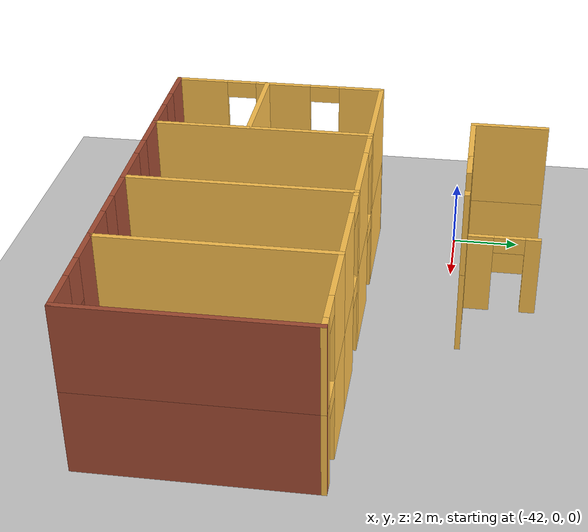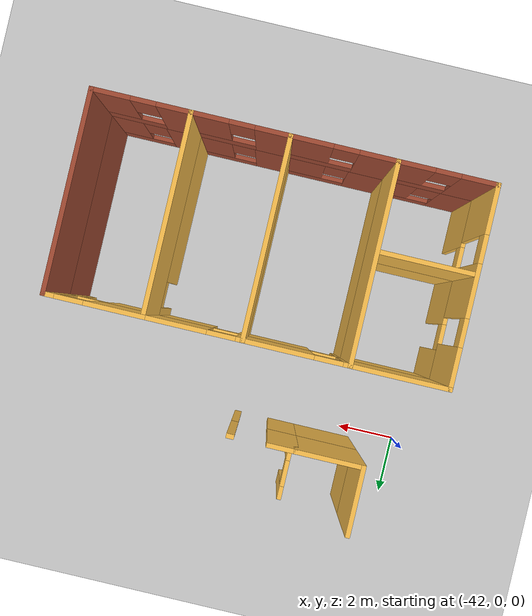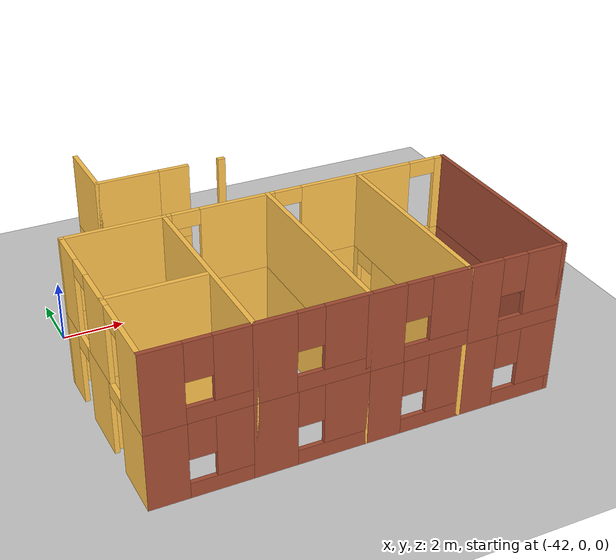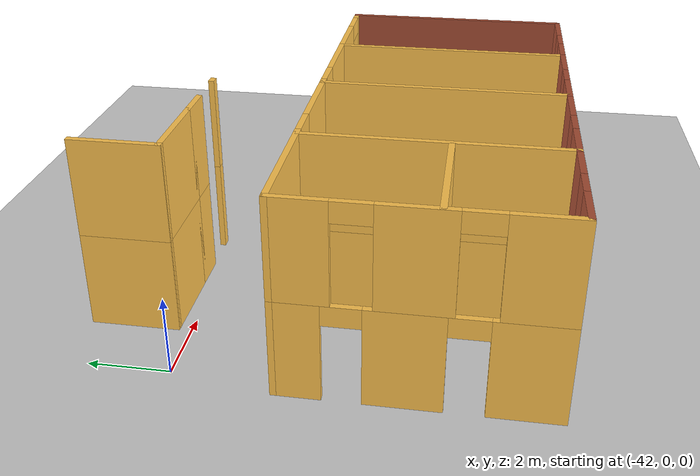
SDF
<sdf version="1.7">
 <world name="default">
  <model name="ground_plane">
   <static>1</static>
   <link name="link">
    <collision name="collision">
     <geometry><plane><normal>0 0 1</normal><size>100 100</size></plane></geometry>
     <surface>
      <contact><collide_bitmask>65535</collide_bitmask></contact>
      <friction><ode><mu>100</mu><mu2>50</mu2></ode></friction>
     </surface>
    </collision>
    <visual name="visual">
     <cast_shadows>0</cast_shadows>
     <geometry><plane><normal>0 0 1</normal><size>100 100</size></plane></geometry>
     <material>
      <script><uri>file://media/materials/scripts/gazebo.material</uri><name>Gazebo/Grey</name></script>
     </material>
    </visual>
   </link>
  </model>
  <model name="DepartmentBuilding">
   <pose>-25.6559 18.8293 0 0 -0 0</pose>
   <link name="Wall_118">
    <collision name="Wall_118_Collision">
     <geometry><box><size>2.25 0.15 2.5</size></box></geometry>
     <pose>0 0 1.25 0 -0 0</pose>
    </collision>
    <visual name="Wall_118_Visual">
     <pose>0 0 1.25 0 -0 0</pose>
     <geometry><box><size>2.25 0.15 2.5</size></box></geometry>
     <material>
      <script><uri>file://media/materials/scripts/gazebo.material</uri><name>Gazebo/Grey</name></script>
      <ambient>1 0.764706 0.305882 1</ambient>
     </material>
     <meta><layer>0</layer></meta>
    </visual>
    <pose>-14.6905 -17.3892 0 0 -0 -1.5708</pose>
   </link>
   <link name="Wall_119">
    <collision name="Wall_119_Collision">
     <geometry><box><size>2.25 0.15 2.5</size></box></geometry>
     <pose>0 0 1.25 0 -0 0</pose>
    </collision>
    <visual name="Wall_119_Visual">
     <pose>0 0 1.25 0 -0 0</pose>
     <geometry><box><size>2.25 0.15 2.5</size></box></geometry>
     <material>
      <script><uri>file://media/materials/scripts/gazebo.material</uri><name>Gazebo/Grey</name></script>
      <ambient>1 0.764706 0.305882 1</ambient>
     </material>
     <meta><layer>0</layer></meta>
    </visual>
    <pose>-13.6405 -18.4392 0 0 -0 0</pose>
   </link>
   <link name="Wall_120">
    <collision name="Wall_120_Collision">
     <geometry><box><size>1 0.15 2.5</size></box></geometry>
     <pose>0 0 1.25 0 -0 0</pose>
    </collision>
    <visual name="Wall_120_Visual">
     <pose>0 0 1.25 0 -0 0</pose>
     <geometry><box><size>1 0.15 2.5</size></box></geometry>
     <material>
      <script><uri>file://media/materials/scripts/gazebo.material</uri><name>Gazebo/Grey</name></script>
      <ambient>1 0.764706 0.305882 1</ambient>
     </material>
     <meta><layer>0</layer></meta>
    </visual>
    <pose>-12.1655 -18.4392 0 0 -0 0</pose>
   </link>
   <link name="Wall_122">
    <pose>-12.5905 -17.3892 0 0 -0 1.5708</pose>
    <visual name="Wall_122_Visual_0">
     <pose>-0.67873 0 1.25 0 -0 0</pose>
     <geometry><box><size>0.89254 0.15 2.5</size></box></geometry>
     <material>
      <script><uri>file://media/materials/scripts/gazebo.material</uri><name>Gazebo/Grey</name></script>
      <ambient>1 0.764706 0.305882 1</ambient>
     </material>
     <meta><layer>0</layer></meta>
    </visual>
    <collision name="Wall_122_Collision_0">
     <geometry><box><size>0.89254 0.15 2.5</size></box></geometry>
     <pose>-0.67873 0 1.25 0 -0 0</pose>
    </collision>
    <visual name="Wall_122_Visual_1">
     <pose>0.89627 0 1.25 0 -0 0</pose>
     <geometry><box><size>0.45746 0.15 2.5</size></box></geometry>
     <material>
      <script><uri>file://media/materials/scripts/gazebo.material</uri><name>Gazebo/Grey</name></script>
      <ambient>1 0.764706 0.305882 1</ambient>
     </material>
     <meta><layer>0</layer></meta>
    </visual>
    <collision name="Wall_122_Collision_1">
     <geometry><box><size>0.45746 0.15 2.5</size></box></geometry>
     <pose>0.89627 0 1.25 0 -0 0</pose>
    </collision>
    <visual name="Wall_122_Visual_2">
     <pose>0.21754 0 2.25 0 -0 0</pose>
     <geometry><box><size>0.9 0.15 0.5</size></box></geometry>
     <material>
      <script><uri>file://media/materials/scripts/gazebo.material</uri><name>Gazebo/Grey</name></script>
      <ambient>1 0.764706 0.305882 1</ambient>
     </material>
     <meta><layer>0</layer></meta>
    </visual>
    <collision name="Wall_122_Collision_2">
     <geometry><box><size>0.9 0.15 0.5</size></box></geometry>
     <pose>0.21754 0 2.25 0 -0 0</pose>
    </collision>
   </link>
   <link name="Wall_129">
    <collision name="Wall_129_Collision">
     <geometry><box><size>0.25 0.15 2.5</size></box></geometry>
     <pose>0 0 1.25 0 -0 0</pose>
    </collision>
    <visual name="Wall_129_Visual">
     <pose>0 0 1.25 0 -0 0</pose>
     <geometry><box><size>0.25 0.15 2.5</size></box></geometry>
     <material>
      <script><uri>file://media/materials/scripts/gazebo.material</uri><name>Gazebo/Grey</name></script>
      <ambient>1 0.764706 0.305882 1</ambient>
     </material>
     <meta><layer>0</layer></meta>
    </visual>
    <pose>-10.5405 -18.4392 0 0 -0 3.14159</pose>
   </link>
   <link name="Wall_48">
    <collision name="Wall_48_Collision">
     <geometry><box><size>6.5 0.15 2.5</size></box></geometry>
     <pose>0 0 1.25 0 -0 0</pose>
    </collision>
    <visual name="Wall_48_Visual">
     <pose>0 0 1.25 0 -0 0</pose>
     <geometry><box><size>6.5 0.15 2.5</size></box></geometry>
     <material>
      <script><uri>file://media/materials/scripts/gazebo.material</uri><name>Gazebo/Bricks</name></script>
      <ambient>1 1 1 1</ambient>
     </material>
     <meta><layer>0</layer></meta>
    </visual>
    <pose>-4.04054 -24.5142 0 0 -0 1.5708</pose>
   </link>
   <link name="Wall_54">
    <pose>-5.59054 -21.3392 0 0 -0 3.14159</pose>
    <visual name="Wall_54_Visual_0">
     <pose>-1.41477 0 1.25 0 -0 0</pose>
     <geometry><box><size>0.420453 0.15 2.5</size></box></geometry>
     <material>
      <script><uri>file://media/materials/scripts/gazebo.material</uri><name>Gazebo/Grey</name></script>
      <ambient>1 0.764706 0.305882 1</ambient>
     </material>
     <meta><layer>0</layer></meta>
    </visual>
    <collision name="Wall_54_Collision_0">
     <geometry><box><size>0.420453 0.15 2.5</size></box></geometry>
     <pose>-1.41477 0 1.25 0 -0 0</pose>
    </collision>
    <visual name="Wall_54_Visual_1">
     <pose>0.660226 0 1.25 0 -0 0</pose>
     <geometry><box><size>1.92955 0.15 2.5</size></box></geometry>
     <material>
      <script><uri>file://media/materials/scripts/gazebo.material</uri><name>Gazebo/Grey</name></script>
      <ambient>1 0.764706 0.305882 1</ambient>
     </material>
     <meta><layer>0</layer></meta>
    </visual>
    <collision name="Wall_54_Collision_1">
     <geometry><box><size>1.92955 0.15 2.5</size></box></geometry>
     <pose>0.660226 0 1.25 0 -0 0</pose>
    </collision>
    <visual name="Wall_54_Visual_2">
     <pose>-0.754547 0 2.25 0 -0 0</pose>
     <geometry><box><size>0.9 0.15 0.5</size></box></geometry>
     <material>
      <script><uri>file://media/materials/scripts/gazebo.material</uri><name>Gazebo/Grey</name></script>
      <ambient>1 0.764706 0.305882 1</ambient>
     </material>
     <meta><layer>0</layer></meta>
    </visual>
    <collision name="Wall_54_Collision_2">
     <geometry><box><size>0.9 0.15 0.5</size></box></geometry>
     <pose>-0.754547 0 2.25 0 -0 0</pose>
    </collision>
   </link>
   <link name="Wall_56">
    <pose>-7.14054 -24.5142 0 0 -0 -1.5708</pose>
    <visual name="Wall_56_Visual_0">
     <pose>-3.04712 0 1.25 0 -0 0</pose>
     <geometry><box><size>0.405751 0.15 2.5</size></box></geometry>
     <material>
      <script><uri>file://media/materials/scripts/gazebo.material</uri><name>Gazebo/Grey</name></script>
      <ambient>1 0.764706 0.305882 1</ambient>
     </material>
     <meta><layer>0</layer></meta>
    </visual>
    <collision name="Wall_56_Collision_0">
     <geometry><box><size>0.405751 0.15 2.5</size></box></geometry>
     <pose>-3.04712 0 1.25 0 -0 0</pose>
    </collision>
    <visual name="Wall_56_Visual_1">
     <pose>0.652876 0 1.25 0 -0 0</pose>
     <geometry><box><size>5.19425 0.15 2.5</size></box></geometry>
     <material>
      <script><uri>file://media/materials/scripts/gazebo.material</uri><name>Gazebo/Grey</name></script>
      <ambient>1 0.764706 0.305882 1</ambient>
     </material>
     <meta><layer>0</layer></meta>
    </visual>
    <collision name="Wall_56_Collision_1">
     <geometry><box><size>5.19425 0.15 2.5</size></box></geometry>
     <pose>0.652876 0 1.25 0 -0 0</pose>
    </collision>
    <visual name="Wall_56_Visual_2">
     <pose>-2.39425 0 2.25 0 -0 0</pose>
     <geometry><box><size>0.9 0.15 0.5</size></box></geometry>
     <material>
      <script><uri>file://media/materials/scripts/gazebo.material</uri><name>Gazebo/Grey</name></script>
      <ambient>1 0.764706 0.305882 1</ambient>
     </material>
     <meta><layer>0</layer></meta>
    </visual>
    <collision name="Wall_56_Collision_2">
     <geometry><box><size>0.9 0.15 0.5</size></box></geometry>
     <pose>-2.39425 0 2.25 0 -0 0</pose>
    </collision>
   </link>
   <link name="Wall_57">
    <pose>-5.59054 -27.6892 0 0 -0 0</pose>
    <visual name="Wall_57_Visual_0">
     <pose>-1.01873 0 1.25 0 -0 0</pose>
     <geometry><box><size>1.21255 0.15 2.5</size></box></geometry>
     <material>
      <script><uri>file://media/materials/scripts/gazebo.material</uri><name>Gazebo/Bricks</name></script>
      <ambient>1 1 1 1</ambient>
     </material>
     <meta><layer>0</layer></meta>
    </visual>
    <collision name="Wall_57_Collision_0">
     <geometry><box><size>1.21255 0.15 2.5</size></box></geometry>
     <pose>-1.01873 0 1.25 0 -0 0</pose>
    </collision>
    <visual name="Wall_57_Visual_1">
     <pose>0.606273 0 0.25 0 -0 0</pose>
     <geometry><box><size>2.03745 0.15 0.5</size></box></geometry>
     <material>
      <script><uri>file://media/materials/scripts/gazebo.material</uri><name>Gazebo/Bricks</name></script>
      <ambient>1 1 1 1</ambient>
     </material>
     <meta><layer>0</layer></meta>
    </visual>
    <collision name="Wall_57_Collision_1">
     <geometry><box><size>2.03745 0.15 0.5</size></box></geometry>
     <pose>0.606273 0 0.25 0 -0 0</pose>
    </collision>
    <visual name="Wall_57_Visual_2">
     <pose>1.00627 0 1.5 0 -0 0</pose>
     <geometry><box><size>1.23745 0.15 2</size></box></geometry>
     <material>
      <script><uri>file://media/materials/scripts/gazebo.material</uri><name>Gazebo/Bricks</name></script>
      <ambient>1 1 1 1</ambient>
     </material>
     <meta><layer>0</layer></meta>
    </visual>
    <collision name="Wall_57_Collision_2">
     <geometry><box><size>1.23745 0.15 2</size></box></geometry>
     <pose>1.00627 0 1.5 0 -0 0</pose>
    </collision>
    <visual name="Wall_57_Visual_3">
     <pose>-0.012454 0 1.9 0 -0 0</pose>
     <geometry><box><size>0.8 0.15 1.2</size></box></geometry>
     <material>
      <script><uri>file://media/materials/scripts/gazebo.material</uri><name>Gazebo/Bricks</name></script>
      <ambient>1 1 1 1</ambient>
     </material>
     <meta><layer>0</layer></meta>
    </visual>
    <collision name="Wall_57_Collision_3">
     <geometry><box><size>0.8 0.15 1.2</size></box></geometry>
     <pose>-0.012454 0 1.9 0 -0 0</pose>
    </collision>
   </link>
   <link name="Wall_59">
    <pose>-8.69054 -21.3392 0 0 -0 3.14159</pose>
    <visual name="Wall_59_Visual_0">
     <pose>-0.626948 0 1.25 0 -0 0</pose>
     <geometry><box><size>1.9961 0.15 2.5</size></box></geometry>
     <material>
      <script><uri>file://media/materials/scripts/gazebo.material</uri><name>Gazebo/Grey</name></script>
      <ambient>1 0.764706 0.305882 1</ambient>
     </material>
     <meta><layer>0</layer></meta>
    </visual>
    <collision name="Wall_59_Collision_0">
     <geometry><box><size>1.9961 0.15 2.5</size></box></geometry>
     <pose>-0.626948 0 1.25 0 -0 0</pose>
    </collision>
    <visual name="Wall_59_Visual_1">
     <pose>1.44805 0 1.25 0 -0 0</pose>
     <geometry><box><size>0.353897 0.15 2.5</size></box></geometry>
     <material>
      <script><uri>file://media/materials/scripts/gazebo.material</uri><name>Gazebo/Grey</name></script>
      <ambient>1 0.764706 0.305882 1</ambient>
     </material>
     <meta><layer>0</layer></meta>
    </visual>
    <collision name="Wall_59_Collision_1">
     <geometry><box><size>0.353897 0.15 2.5</size></box></geometry>
     <pose>1.44805 0 1.25 0 -0 0</pose>
    </collision>
    <visual name="Wall_59_Visual_2">
     <pose>0.821103 0 2.25 0 -0 0</pose>
     <geometry><box><size>0.9 0.15 0.5</size></box></geometry>
     <material>
      <script><uri>file://media/materials/scripts/gazebo.material</uri><name>Gazebo/Grey</name></script>
      <ambient>1 0.764706 0.305882 1</ambient>
     </material>
     <meta><layer>0</layer></meta>
    </visual>
    <collision name="Wall_59_Collision_2">
     <geometry><box><size>0.9 0.15 0.5</size></box></geometry>
     <pose>0.821103 0 2.25 0 -0 0</pose>
    </collision>
   </link>
   <link name="Wall_60">
    <collision name="Wall_60_Collision">
     <geometry><box><size>6.5 0.15 2.5</size></box></geometry>
     <pose>0 0 1.25 0 -0 0</pose>
    </collision>
    <visual name="Wall_60_Visual">
     <pose>0 0 1.25 0 -0 0</pose>
     <geometry><box><size>6.5 0.15 2.5</size></box></geometry>
     <material>
      <script><uri>file://media/materials/scripts/gazebo.material</uri><name>Gazebo/Grey</name></script>
      <ambient>1 0.764706 0.305882 1</ambient>
     </material>
     <meta><layer>0</layer></meta>
    </visual>
    <pose>-10.2405 -24.5142 0 0 -0 -1.5708</pose>
   </link>
   <link name="Wall_61">
    <pose>-8.69054 -27.6892 0 0 -0 0</pose>
    <visual name="Wall_61_Visual_0">
     <pose>-1.01242 0 1.25 0 -0 0</pose>
     <geometry><box><size>1.22517 0.15 2.5</size></box></geometry>
     <material>
      <script><uri>file://media/materials/scripts/gazebo.material</uri><name>Gazebo/Bricks</name></script>
      <ambient>1 1 1 1</ambient>
     </material>
     <meta><layer>0</layer></meta>
    </visual>
    <collision name="Wall_61_Collision_0">
     <geometry><box><size>1.22517 0.15 2.5</size></box></geometry>
     <pose>-1.01242 0 1.25 0 -0 0</pose>
    </collision>
    <visual name="Wall_61_Visual_1">
     <pose>0.612585 0 0.25 0 -0 0</pose>
     <geometry><box><size>2.02483 0.15 0.5</size></box></geometry>
     <material>
      <script><uri>file://media/materials/scripts/gazebo.material</uri><name>Gazebo/Bricks</name></script>
      <ambient>1 1 1 1</ambient>
     </material>
     <meta><layer>0</layer></meta>
    </visual>
    <collision name="Wall_61_Collision_1">
     <geometry><box><size>2.02483 0.15 0.5</size></box></geometry>
     <pose>0.612585 0 0.25 0 -0 0</pose>
    </collision>
    <visual name="Wall_61_Visual_2">
     <pose>1.01259 0 1.5 0 -0 0</pose>
     <geometry><box><size>1.22483 0.15 2</size></box></geometry>
     <material>
      <script><uri>file://media/materials/scripts/gazebo.material</uri><name>Gazebo/Bricks</name></script>
      <ambient>1 1 1 1</ambient>
     </material>
     <meta><layer>0</layer></meta>
    </visual>
    <collision name="Wall_61_Collision_2">
     <geometry><box><size>1.22483 0.15 2</size></box></geometry>
     <pose>1.01259 0 1.5 0 -0 0</pose>
    </collision>
    <visual name="Wall_61_Visual_3">
     <pose>0.00017 0 1.9 0 -0 0</pose>
     <geometry><box><size>0.8 0.15 1.2</size></box></geometry>
     <material>
      <script><uri>file://media/materials/scripts/gazebo.material</uri><name>Gazebo/Bricks</name></script>
      <ambient>1 1 1 1</ambient>
     </material>
     <meta><layer>0</layer></meta>
    </visual>
    <collision name="Wall_61_Collision_3">
     <geometry><box><size>0.8 0.15 1.2</size></box></geometry>
     <pose>0.00017 0 1.9 0 -0 0</pose>
    </collision>
   </link>
   <link name="Wall_63">
    <pose>-11.9155 -21.3392 0 0 -0 3.14159</pose>
    <visual name="Wall_63_Visual_0">
     <pose>-0.593884 0 1.25 0 -0 0</pose>
     <geometry><box><size>2.31223 0.15 2.5</size></box></geometry>
     <material>
      <script><uri>file://media/materials/scripts/gazebo.material</uri><name>Gazebo/Grey</name></script>
      <ambient>1 0.764706 0.305882 1</ambient>
     </material>
     <meta><layer>0</layer></meta>
    </visual>
    <collision name="Wall_63_Collision_0">
     <geometry><box><size>2.31223 0.15 2.5</size></box></geometry>
     <pose>-0.593884 0 1.25 0 -0 0</pose>
    </collision>
    <visual name="Wall_63_Visual_1">
     <pose>1.60612 0 1.25 0 -0 0</pose>
     <geometry><box><size>0.287767 0.15 2.5</size></box></geometry>
     <material>
      <script><uri>file://media/materials/scripts/gazebo.material</uri><name>Gazebo/Grey</name></script>
      <ambient>1 0.764706 0.305882 1</ambient>
     </material>
     <meta><layer>0</layer></meta>
    </visual>
    <collision name="Wall_63_Collision_1">
     <geometry><box><size>0.287767 0.15 2.5</size></box></geometry>
     <pose>1.60612 0 1.25 0 -0 0</pose>
    </collision>
    <visual name="Wall_63_Visual_2">
     <pose>1.01223 0 2.25 0 -0 0</pose>
     <geometry><box><size>0.9 0.15 0.5</size></box></geometry>
     <material>
      <script><uri>file://media/materials/scripts/gazebo.material</uri><name>Gazebo/Grey</name></script>
      <ambient>1 0.764706 0.305882 1</ambient>
     </material>
     <meta><layer>0</layer></meta>
    </visual>
    <collision name="Wall_63_Collision_2">
     <geometry><box><size>0.9 0.15 0.5</size></box></geometry>
     <pose>1.01223 0 2.25 0 -0 0</pose>
    </collision>
   </link>
   <link name="Wall_64">
    <collision name="Wall_64_Collision">
     <geometry><box><size>6.5 0.15 2.5</size></box></geometry>
     <pose>0 0 1.25 0 -0 0</pose>
    </collision>
    <visual name="Wall_64_Visual">
     <pose>0 0 1.25 0 -0 0</pose>
     <geometry><box><size>6.5 0.15 2.5</size></box></geometry>
     <material>
      <script><uri>file://media/materials/scripts/gazebo.material</uri><name>Gazebo/Grey</name></script>
      <ambient>1 0.764706 0.305882 1</ambient>
     </material>
     <meta><layer>0</layer></meta>
    </visual>
    <pose>-13.5905 -24.5142 0 0 -0 -1.5708</pose>
   </link>
   <link name="Wall_65">
    <pose>-11.9155 -27.6892 0 0 -0 0</pose>
    <visual name="Wall_65_Visual_0">
     <pose>-1.08683 0 1.25 0 -0 0</pose>
     <geometry><box><size>1.32634 0.15 2.5</size></box></geometry>
     <material>
      <script><uri>file://media/materials/scripts/gazebo.material</uri><name>Gazebo/Bricks</name></script>
      <ambient>1 1 1 1</ambient>
     </material>
     <meta><layer>0</layer></meta>
    </visual>
    <collision name="Wall_65_Collision_0">
     <geometry><box><size>1.32634 0.15 2.5</size></box></geometry>
     <pose>-1.08683 0 1.25 0 -0 0</pose>
    </collision>
    <visual name="Wall_65_Visual_1">
     <pose>0.663168 0 0.25 0 -0 0</pose>
     <geometry><box><size>2.17366 0.15 0.5</size></box></geometry>
     <material>
      <script><uri>file://media/materials/scripts/gazebo.material</uri><name>Gazebo/Bricks</name></script>
      <ambient>1 1 1 1</ambient>
     </material>
     <meta><layer>0</layer></meta>
    </visual>
    <collision name="Wall_65_Collision_1">
     <geometry><box><size>2.17366 0.15 0.5</size></box></geometry>
     <pose>0.663168 0 0.25 0 -0 0</pose>
    </collision>
    <visual name="Wall_65_Visual_2">
     <pose>1.06317 0 1.5 0 -0 0</pose>
     <geometry><box><size>1.37366 0.15 2</size></box></geometry>
     <material>
      <script><uri>file://media/materials/scripts/gazebo.material</uri><name>Gazebo/Bricks</name></script>
      <ambient>1 1 1 1</ambient>
     </material>
     <meta><layer>0</layer></meta>
    </visual>
    <collision name="Wall_65_Collision_2">
     <geometry><box><size>1.37366 0.15 2</size></box></geometry>
     <pose>1.06317 0 1.5 0 -0 0</pose>
    </collision>
    <visual name="Wall_65_Visual_3">
     <pose>-0.023664 0 1.9 0 -0 0</pose>
     <geometry><box><size>0.8 0.15 1.2</size></box></geometry>
     <material>
      <script><uri>file://media/materials/scripts/gazebo.material</uri><name>Gazebo/Bricks</name></script>
      <ambient>1 1 1 1</ambient>
     </material>
     <meta><layer>0</layer></meta>
    </visual>
    <collision name="Wall_65_Collision_3">
     <geometry><box><size>0.8 0.15 1.2</size></box></geometry>
     <pose>-0.023664 0 1.9 0 -0 0</pose>
    </collision>
   </link>
   <link name="Wall_805">
    <collision name="Wall_805_Collision">
     <geometry><box><size>6.5 0.15 2.5</size></box></geometry>
     <pose>0 0 1.25 0 -0 0</pose>
    </collision>
    <visual name="Wall_805_Visual">
     <pose>0 0 1.25 0 -0 0</pose>
     <geometry><box><size>6.5 0.15 2.5</size></box></geometry>
     <material>
      <script><uri>file://media/materials/scripts/gazebo.material</uri><name>Gazebo/Bricks</name></script>
      <ambient>1 1 1 1</ambient>
     </material>
     <meta><layer>1</layer></meta>
    </visual>
    <pose>-4.04054 -24.5142 2.5 0 -0 1.5708</pose>
   </link>
   <link name="Wall_806">
    <pose>-5.59054 -21.3392 2.5 0 -0 3.14159</pose>
    <visual name="Wall_806_Visual_0">
     <pose>-1.41607 0 1.25 0 -0 0</pose>
     <geometry><box><size>0.417858 0.15 2.5</size></box></geometry>
     <material>
      <script><uri>file://media/materials/scripts/gazebo.material</uri><name>Gazebo/Grey</name></script>
      <ambient>1 0.764706 0.305882 1</ambient>
     </material>
     <meta><layer>1</layer></meta>
    </visual>
    <collision name="Wall_806_Collision_0">
     <geometry><box><size>0.417858 0.15 2.5</size></box></geometry>
     <pose>-1.41607 0 1.25 0 -0 0</pose>
    </collision>
    <visual name="Wall_806_Visual_1">
     <pose>0.658929 0 1.25 0 -0 0</pose>
     <geometry><box><size>1.93214 0.15 2.5</size></box></geometry>
     <material>
      <script><uri>file://media/materials/scripts/gazebo.material</uri><name>Gazebo/Grey</name></script>
      <ambient>1 0.764706 0.305882 1</ambient>
     </material>
     <meta><layer>1</layer></meta>
    </visual>
    <collision name="Wall_806_Collision_1">
     <geometry><box><size>1.93214 0.15 2.5</size></box></geometry>
     <pose>0.658929 0 1.25 0 -0 0</pose>
    </collision>
    <visual name="Wall_806_Visual_2">
     <pose>-0.757142 0 2.25 0 -0 0</pose>
     <geometry><box><size>0.9 0.15 0.5</size></box></geometry>
     <material>
      <script><uri>file://media/materials/scripts/gazebo.material</uri><name>Gazebo/Grey</name></script>
      <ambient>1 0.764706 0.305882 1</ambient>
     </material>
     <meta><layer>1</layer></meta>
    </visual>
    <collision name="Wall_806_Collision_2">
     <geometry><box><size>0.9 0.15 0.5</size></box></geometry>
     <pose>-0.757142 0 2.25 0 -0 0</pose>
    </collision>
   </link>
   <link name="Wall_807">
    <collision name="Wall_807_Collision">
     <geometry><box><size>6.5 0.15 2.5</size></box></geometry>
     <pose>0 0 1.25 0 -0 0</pose>
    </collision>
    <visual name="Wall_807_Visual">
     <pose>0 0 1.25 0 -0 0</pose>
     <geometry><box><size>6.5 0.15 2.5</size></box></geometry>
     <material>
      <script><uri>file://media/materials/scripts/gazebo.material</uri><name>Gazebo/Grey</name></script>
      <ambient>1 0.764706 0.305882 1</ambient>
     </material>
     <meta><layer>1</layer></meta>
    </visual>
    <pose>-7.14054 -24.5142 2.5 0 -0 -1.5708</pose>
   </link>
   <link name="Wall_808">
    <pose>-5.59054 -27.6892 2.5 0 -0 0</pose>
    <visual name="Wall_808_Visual_0">
     <pose>-1.04507 0 1.25 0 -0 0</pose>
     <geometry><box><size>1.15985 0.15 2.5</size></box></geometry>
     <material>
      <script><uri>file://media/materials/scripts/gazebo.material</uri><name>Gazebo/Bricks</name></script>
      <ambient>1 1 1 1</ambient>
     </material>
     <meta><layer>1</layer></meta>
    </visual>
    <collision name="Wall_808_Collision_0">
     <geometry><box><size>1.15985 0.15 2.5</size></box></geometry>
     <pose>-1.04507 0 1.25 0 -0 0</pose>
    </collision>
    <visual name="Wall_808_Visual_1">
     <pose>0.579926 0 0.25 0 -0 0</pose>
     <geometry><box><size>2.09015 0.15 0.5</size></box></geometry>
     <material>
      <script><uri>file://media/materials/scripts/gazebo.material</uri><name>Gazebo/Bricks</name></script>
      <ambient>1 1 1 1</ambient>
     </material>
     <meta><layer>1</layer></meta>
    </visual>
    <collision name="Wall_808_Collision_1">
     <geometry><box><size>2.09015 0.15 0.5</size></box></geometry>
     <pose>0.579926 0 0.25 0 -0 0</pose>
    </collision>
    <visual name="Wall_808_Visual_2">
     <pose>0.979926 0 1.5 0 -0 0</pose>
     <geometry><box><size>1.29015 0.15 2</size></box></geometry>
     <material>
      <script><uri>file://media/materials/scripts/gazebo.material</uri><name>Gazebo/Bricks</name></script>
      <ambient>1 1 1 1</ambient>
     </material>
     <meta><layer>1</layer></meta>
    </visual>
    <collision name="Wall_808_Collision_2">
     <geometry><box><size>1.29015 0.15 2</size></box></geometry>
     <pose>0.979926 0 1.5 0 -0 0</pose>
    </collision>
    <visual name="Wall_808_Visual_3">
     <pose>-0.065147 0 1.9 0 -0 0</pose>
     <geometry><box><size>0.8 0.15 1.2</size></box></geometry>
     <material>
      <script><uri>file://media/materials/scripts/gazebo.material</uri><name>Gazebo/Bricks</name></script>
      <ambient>1 1 1 1</ambient>
     </material>
     <meta><layer>1</layer></meta>
    </visual>
    <collision name="Wall_808_Collision_3">
     <geometry><box><size>0.8 0.15 1.2</size></box></geometry>
     <pose>-0.065147 0 1.9 0 -0 0</pose>
    </collision>
   </link>
   <link name="Wall_809">
    <pose>-8.69054 -21.3392 2.5 0 -0 3.14159</pose>
    <visual name="Wall_809_Visual_0">
     <pose>-0.598653 0 1.25 0 -0 0</pose>
     <geometry><box><size>2.05269 0.15 2.5</size></box></geometry>
     <material>
      <script><uri>file://media/materials/scripts/gazebo.material</uri><name>Gazebo/Grey</name></script>
      <ambient>1 0.764706 0.305882 1</ambient>
     </material>
     <meta><layer>1</layer></meta>
    </visual>
    <collision name="Wall_809_Collision_0">
     <geometry><box><size>2.05269 0.15 2.5</size></box></geometry>
     <pose>-0.598653 0 1.25 0 -0 0</pose>
    </collision>
    <visual name="Wall_809_Visual_1">
     <pose>1.47635 0 1.25 0 -0 0</pose>
     <geometry><box><size>0.297307 0.15 2.5</size></box></geometry>
     <material>
      <script><uri>file://media/materials/scripts/gazebo.material</uri><name>Gazebo/Grey</name></script>
      <ambient>1 0.764706 0.305882 1</ambient>
     </material>
     <meta><layer>1</layer></meta>
    </visual>
    <collision name="Wall_809_Collision_1">
     <geometry><box><size>0.297307 0.15 2.5</size></box></geometry>
     <pose>1.47635 0 1.25 0 -0 0</pose>
    </collision>
    <visual name="Wall_809_Visual_2">
     <pose>0.877693 0 2.25 0 -0 0</pose>
     <geometry><box><size>0.9 0.15 0.5</size></box></geometry>
     <material>
      <script><uri>file://media/materials/scripts/gazebo.material</uri><name>Gazebo/Grey</name></script>
      <ambient>1 0.764706 0.305882 1</ambient>
     </material>
     <meta><layer>1</layer></meta>
    </visual>
    <collision name="Wall_809_Collision_2">
     <geometry><box><size>0.9 0.15 0.5</size></box></geometry>
     <pose>0.877693 0 2.25 0 -0 0</pose>
    </collision>
   </link>
   <link name="Wall_81">
    <collision name="Wall_81_Collision">
     <geometry><box><size>3.25 0.15 2.5</size></box></geometry>
     <pose>0 0 1.25 0 -0 0</pose>
    </collision>
    <visual name="Wall_81_Visual">
     <pose>0 0 1.25 0 -0 0</pose>
     <geometry><box><size>3.25 0.15 2.5</size></box></geometry>
     <material>
      <script><uri>file://media/materials/scripts/gazebo.material</uri><name>Gazebo/Grey</name></script>
      <ambient>1 0.764706 0.305882 1</ambient>
     </material>
     <meta><layer>0</layer></meta>
    </visual>
    <pose>-15.1405 -21.3392 0 0 -0 3.14159</pose>
   </link>
   <link name="Wall_810">
    <collision name="Wall_810_Collision">
     <geometry><box><size>6.5 0.15 2.5</size></box></geometry>
     <pose>0 0 1.25 0 -0 0</pose>
    </collision>
    <visual name="Wall_810_Visual">
     <pose>0 0 1.25 0 -0 0</pose>
     <geometry><box><size>6.5 0.15 2.5</size></box></geometry>
     <material>
      <script><uri>file://media/materials/scripts/gazebo.material</uri><name>Gazebo/Grey</name></script>
      <ambient>1 0.764706 0.305882 1</ambient>
     </material>
     <meta><layer>1</layer></meta>
    </visual>
    <pose>-10.2405 -24.5142 2.5 0 -0 -1.5708</pose>
   </link>
   <link name="Wall_811">
    <pose>-8.69054 -27.6892 2.5 0 -0 0</pose>
    <visual name="Wall_811_Visual_0">
     <pose>-1.03036 0 1.25 0 -0 0</pose>
     <geometry><box><size>1.18927 0.15 2.5</size></box></geometry>
     <material>
      <script><uri>file://media/materials/scripts/gazebo.material</uri><name>Gazebo/Bricks</name></script>
      <ambient>1 1 1 1</ambient>
     </material>
     <meta><layer>1</layer></meta>
    </visual>
    <collision name="Wall_811_Collision_0">
     <geometry><box><size>1.18927 0.15 2.5</size></box></geometry>
     <pose>-1.03036 0 1.25 0 -0 0</pose>
    </collision>
    <visual name="Wall_811_Visual_1">
     <pose>0.594637 0 0.25 0 -0 0</pose>
     <geometry><box><size>2.06073 0.15 0.5</size></box></geometry>
     <material>
      <script><uri>file://media/materials/scripts/gazebo.material</uri><name>Gazebo/Bricks</name></script>
      <ambient>1 1 1 1</ambient>
     </material>
     <meta><layer>1</layer></meta>
    </visual>
    <collision name="Wall_811_Collision_1">
     <geometry><box><size>2.06073 0.15 0.5</size></box></geometry>
     <pose>0.594637 0 0.25 0 -0 0</pose>
    </collision>
    <visual name="Wall_811_Visual_2">
     <pose>0.994637 0 1.5 0 -0 0</pose>
     <geometry><box><size>1.26073 0.15 2</size></box></geometry>
     <material>
      <script><uri>file://media/materials/scripts/gazebo.material</uri><name>Gazebo/Bricks</name></script>
      <ambient>1 1 1 1</ambient>
     </material>
     <meta><layer>1</layer></meta>
    </visual>
    <collision name="Wall_811_Collision_2">
     <geometry><box><size>1.26073 0.15 2</size></box></geometry>
     <pose>0.994637 0 1.5 0 -0 0</pose>
    </collision>
    <visual name="Wall_811_Visual_3">
     <pose>-0.035726 0 1.9 0 -0 0</pose>
     <geometry><box><size>0.8 0.15 1.2</size></box></geometry>
     <material>
      <script><uri>file://media/materials/scripts/gazebo.material</uri><name>Gazebo/Bricks</name></script>
      <ambient>1 1 1 1</ambient>
     </material>
     <meta><layer>1</layer></meta>
    </visual>
    <collision name="Wall_811_Collision_3">
     <geometry><box><size>0.8 0.15 1.2</size></box></geometry>
     <pose>-0.035726 0 1.9 0 -0 0</pose>
    </collision>
   </link>
   <link name="Wall_812">
    <pose>-11.9155 -21.3392 2.5 0 -0 3.14159</pose>
    <visual name="Wall_812_Visual_0">
     <pose>-0.598567 0 1.25 0 -0 0</pose>
     <geometry><box><size>2.30287 0.15 2.5</size></box></geometry>
     <material>
      <script><uri>file://media/materials/scripts/gazebo.material</uri><name>Gazebo/Grey</name></script>
      <ambient>1 0.764706 0.305882 1</ambient>
     </material>
     <meta><layer>1</layer></meta>
    </visual>
    <collision name="Wall_812_Collision_0">
     <geometry><box><size>2.30287 0.15 2.5</size></box></geometry>
     <pose>-0.598567 0 1.25 0 -0 0</pose>
    </collision>
    <visual name="Wall_812_Visual_1">
     <pose>1.60143 0 1.25 0 -0 0</pose>
     <geometry><box><size>0.297133 0.15 2.5</size></box></geometry>
     <material>
      <script><uri>file://media/materials/scripts/gazebo.material</uri><name>Gazebo/Grey</name></script>
      <ambient>1 0.764706 0.305882 1</ambient>
     </material>
     <meta><layer>1</layer></meta>
    </visual>
    <collision name="Wall_812_Collision_1">
     <geometry><box><size>0.297133 0.15 2.5</size></box></geometry>
     <pose>1.60143 0 1.25 0 -0 0</pose>
    </collision>
    <visual name="Wall_812_Visual_2">
     <pose>1.00287 0 2.25 0 -0 0</pose>
     <geometry><box><size>0.9 0.15 0.5</size></box></geometry>
     <material>
      <script><uri>file://media/materials/scripts/gazebo.material</uri><name>Gazebo/Grey</name></script>
      <ambient>1 0.764706 0.305882 1</ambient>
     </material>
     <meta><layer>1</layer></meta>
    </visual>
    <collision name="Wall_812_Collision_2">
     <geometry><box><size>0.9 0.15 0.5</size></box></geometry>
     <pose>1.00287 0 2.25 0 -0 0</pose>
    </collision>
   </link>
   <link name="Wall_813">
    <collision name="Wall_813_Collision">
     <geometry><box><size>6.5 0.15 2.5</size></box></geometry>
     <pose>0 0 1.25 0 -0 0</pose>
    </collision>
    <visual name="Wall_813_Visual">
     <pose>0 0 1.25 0 -0 0</pose>
     <geometry><box><size>6.5 0.15 2.5</size></box></geometry>
     <material>
      <script><uri>file://media/materials/scripts/gazebo.material</uri><name>Gazebo/Grey</name></script>
      <ambient>1 0.764706 0.305882 1</ambient>
     </material>
     <meta><layer>1</layer></meta>
    </visual>
    <pose>-13.5905 -24.5142 2.5 0 -0 -1.5708</pose>
   </link>
   <link name="Wall_814">
    <pose>-11.9155 -27.6892 2.5 0 -0 0</pose>
    <visual name="Wall_814_Visual_0">
     <pose>-1.1087 0 1.25 0 -0 0</pose>
     <geometry><box><size>1.2826 0.15 2.5</size></box></geometry>
     <material>
      <script><uri>file://media/materials/scripts/gazebo.material</uri><name>Gazebo/Bricks</name></script>
      <ambient>1 1 1 1</ambient>
     </material>
     <meta><layer>1</layer></meta>
    </visual>
    <collision name="Wall_814_Collision_0">
     <geometry><box><size>1.2826 0.15 2.5</size></box></geometry>
     <pose>-1.1087 0 1.25 0 -0 0</pose>
    </collision>
    <visual name="Wall_814_Visual_1">
     <pose>0.6413 0 0.25 0 -0 0</pose>
     <geometry><box><size>2.2174 0.15 0.5</size></box></geometry>
     <material>
      <script><uri>file://media/materials/scripts/gazebo.material</uri><name>Gazebo/Bricks</name></script>
      <ambient>1 1 1 1</ambient>
     </material>
     <meta><layer>1</layer></meta>
    </visual>
    <collision name="Wall_814_Collision_1">
     <geometry><box><size>2.2174 0.15 0.5</size></box></geometry>
     <pose>0.6413 0 0.25 0 -0 0</pose>
    </collision>
    <visual name="Wall_814_Visual_2">
     <pose>1.0413 0 1.5 0 -0 0</pose>
     <geometry><box><size>1.4174 0.15 2</size></box></geometry>
     <material>
      <script><uri>file://media/materials/scripts/gazebo.material</uri><name>Gazebo/Bricks</name></script>
      <ambient>1 1 1 1</ambient>
     </material>
     <meta><layer>1</layer></meta>
    </visual>
    <collision name="Wall_814_Collision_2">
     <geometry><box><size>1.4174 0.15 2</size></box></geometry>
     <pose>1.0413 0 1.5 0 -0 0</pose>
    </collision>
    <visual name="Wall_814_Visual_3">
     <pose>-0.067399 0 1.9 0 -0 0</pose>
     <geometry><box><size>0.8 0.15 1.2</size></box></geometry>
     <material>
      <script><uri>file://media/materials/scripts/gazebo.material</uri><name>Gazebo/Bricks</name></script>
      <ambient>1 1 1 1</ambient>
     </material>
     <meta><layer>1</layer></meta>
    </visual>
    <collision name="Wall_814_Collision_3">
     <geometry><box><size>0.8 0.15 1.2</size></box></geometry>
     <pose>-0.067399 0 1.9 0 -0 0</pose>
    </collision>
   </link>
   <link name="Wall_815">
    <collision name="Wall_815_Collision">
     <geometry><box><size>3.25 0.15 2.5</size></box></geometry>
     <pose>0 0 1.25 0 -0 0</pose>
    </collision>
    <visual name="Wall_815_Visual">
     <pose>0 0 1.25 0 -0 0</pose>
     <geometry><box><size>3.25 0.15 2.5</size></box></geometry>
     <material>
      <script><uri>file://media/materials/scripts/gazebo.material</uri><name>Gazebo/Grey</name></script>
      <ambient>1 0.764706 0.305882 1</ambient>
     </material>
     <meta><layer>1</layer></meta>
    </visual>
    <pose>-15.1405 -21.3392 2.5 0 -0 3.14159</pose>
   </link>
   <link name="Wall_816">
    <pose>-16.6905 -24.5142 2.5 0 -0 -1.5708</pose>
    <visual name="Wall_816_Visual_0">
     <pose>-2.55926 0 1.25 0 -0 0</pose>
     <geometry><box><size>1.38148 0.15 2.5</size></box></geometry>
     <material>
      <script><uri>file://media/materials/scripts/gazebo.material</uri><name>Gazebo/Grey</name></script>
      <ambient>1 0.764706 0.305882 1</ambient>
     </material>
     <meta><layer>1</layer></meta>
    </visual>
    <collision name="Wall_816_Collision_0">
     <geometry><box><size>1.38148 0.15 2.5</size></box></geometry>
     <pose>-2.55926 0 1.25 0 -0 0</pose>
    </collision>
    <visual name="Wall_816_Visual_1">
     <pose>-0.115112 0 1.25 0 -0 0</pose>
     <geometry><box><size>1.70682 0.15 2.5</size></box></geometry>
     <material>
      <script><uri>file://media/materials/scripts/gazebo.material</uri><name>Gazebo/Grey</name></script>
      <ambient>1 0.764706 0.305882 1</ambient>
     </material>
     <meta><layer>1</layer></meta>
    </visual>
    <collision name="Wall_816_Collision_1">
     <geometry><box><size>1.70682 0.15 2.5</size></box></geometry>
     <pose>-0.115112 0 1.25 0 -0 0</pose>
    </collision>
    <visual name="Wall_816_Visual_2">
     <pose>2.44415 0 1.25 0 -0 0</pose>
     <geometry><box><size>1.6117 0.15 2.5</size></box></geometry>
     <material>
      <script><uri>file://media/materials/scripts/gazebo.material</uri><name>Gazebo/Grey</name></script>
      <ambient>1 0.764706 0.305882 1</ambient>
     </material>
     <meta><layer>1</layer></meta>
    </visual>
    <collision name="Wall_816_Collision_2">
     <geometry><box><size>1.6117 0.15 2.5</size></box></geometry>
     <pose>2.44415 0 1.25 0 -0 0</pose>
    </collision>
    <visual name="Wall_816_Visual_3">
     <pose>-1.41852 0 2.25 0 -0 0</pose>
     <geometry><box><size>0.9 0.15 0.5</size></box></geometry>
     <material>
      <script><uri>file://media/materials/scripts/gazebo.material</uri><name>Gazebo/Grey</name></script>
      <ambient>1 0.764706 0.305882 1</ambient>
     </material>
     <meta><layer>1</layer></meta>
    </visual>
    <collision name="Wall_816_Collision_3">
     <geometry><box><size>0.9 0.15 0.5</size></box></geometry>
     <pose>-1.41852 0 2.25 0 -0 0</pose>
    </collision>
    <visual name="Wall_816_Visual_4">
     <pose>1.1883 0 2.25 0 -0 0</pose>
     <geometry><box><size>0.9 0.15 0.5</size></box></geometry>
     <material>
      <script><uri>file://media/materials/scripts/gazebo.material</uri><name>Gazebo/Grey</name></script>
      <ambient>1 0.764706 0.305882 1</ambient>
     </material>
     <meta><layer>1</layer></meta>
    </visual>
    <collision name="Wall_816_Collision_4">
     <geometry><box><size>0.9 0.15 0.5</size></box></geometry>
     <pose>1.1883 0 2.25 0 -0 0</pose>
    </collision>
   </link>
   <link name="Wall_817">
    <pose>-15.1405 -27.6892 2.5 0 -0 0</pose>
    <visual name="Wall_817_Visual_0">
     <pose>-1.01551 0 1.25 0 -0 0</pose>
     <geometry><box><size>1.21897 0.15 2.5</size></box></geometry>
     <material>
      <script><uri>file://media/materials/scripts/gazebo.material</uri><name>Gazebo/Bricks</name></script>
      <ambient>1 1 1 1</ambient>
     </material>
     <meta><layer>1</layer></meta>
    </visual>
    <collision name="Wall_817_Collision_0">
     <geometry><box><size>1.21897 0.15 2.5</size></box></geometry>
     <pose>-1.01551 0 1.25 0 -0 0</pose>
    </collision>
    <visual name="Wall_817_Visual_1">
     <pose>0.609487 0 0.25 0 -0 0</pose>
     <geometry><box><size>2.03103 0.15 0.5</size></box></geometry>
     <material>
      <script><uri>file://media/materials/scripts/gazebo.material</uri><name>Gazebo/Bricks</name></script>
      <ambient>1 1 1 1</ambient>
     </material>
     <meta><layer>1</layer></meta>
    </visual>
    <collision name="Wall_817_Collision_1">
     <geometry><box><size>2.03103 0.15 0.5</size></box></geometry>
     <pose>0.609487 0 0.25 0 -0 0</pose>
    </collision>
    <visual name="Wall_817_Visual_2">
     <pose>1.00949 0 1.5 0 -0 0</pose>
     <geometry><box><size>1.23103 0.15 2</size></box></geometry>
     <material>
      <script><uri>file://media/materials/scripts/gazebo.material</uri><name>Gazebo/Bricks</name></script>
      <ambient>1 1 1 1</ambient>
     </material>
     <meta><layer>1</layer></meta>
    </visual>
    <collision name="Wall_817_Collision_2">
     <geometry><box><size>1.23103 0.15 2</size></box></geometry>
     <pose>1.00949 0 1.5 0 -0 0</pose>
    </collision>
    <visual name="Wall_817_Visual_3">
     <pose>-0.006025 0 1.9 0 -0 0</pose>
     <geometry><box><size>0.8 0.15 1.2</size></box></geometry>
     <material>
      <script><uri>file://media/materials/scripts/gazebo.material</uri><name>Gazebo/Bricks</name></script>
      <ambient>1 1 1 1</ambient>
     </material>
     <meta><layer>1</layer></meta>
    </visual>
    <collision name="Wall_817_Collision_3">
     <geometry><box><size>0.8 0.15 1.2</size></box></geometry>
     <pose>-0.006025 0 1.9 0 -0 0</pose>
    </collision>
   </link>
   <link name="Wall_818">
    <collision name="Wall_818_Collision">
     <geometry><box><size>3.223 0.15 2.5</size></box></geometry>
     <pose>0 0 1.25 0 -0 0</pose>
    </collision>
    <visual name="Wall_818_Visual">
     <pose>0 0 1.25 0 -0 0</pose>
     <geometry><box><size>3.223 0.15 2.5</size></box></geometry>
     <material>
      <script><uri>file://media/materials/scripts/gazebo.material</uri><name>Gazebo/Grey</name></script>
      <ambient>1 0.764706 0.305882 1</ambient>
     </material>
     <meta><layer>1</layer></meta>
    </visual>
    <pose>-15.137 -24.8976 2.5 0 -0 0</pose>
   </link>
   <link name="Wall_82">
    <pose>-16.6905 -24.5142 0 0 -0 -1.5708</pose>
    <visual name="Wall_82_Visual_0">
     <pose>-2.66921 0 1.25 0 -0 0</pose>
     <geometry><box><size>1.16159 0.15 2.5</size></box></geometry>
     <material>
      <script><uri>file://media/materials/scripts/gazebo.material</uri><name>Gazebo/Grey</name></script>
      <ambient>1 0.764706 0.305882 1</ambient>
     </material>
     <meta><layer>0</layer></meta>
    </visual>
    <collision name="Wall_82_Collision_0">
     <geometry><box><size>1.16159 0.15 2.5</size></box></geometry>
     <pose>-2.66921 0 1.25 0 -0 0</pose>
    </collision>
    <visual name="Wall_82_Visual_1">
     <pose>-0.296075 0 1.25 0 -0 0</pose>
     <geometry><box><size>1.78468 0.15 2.5</size></box></geometry>
     <material>
      <script><uri>file://media/materials/scripts/gazebo.material</uri><name>Gazebo/Grey</name></script>
      <ambient>1 0.764706 0.305882 1</ambient>
     </material>
     <meta><layer>0</layer></meta>
    </visual>
    <collision name="Wall_82_Collision_1">
     <geometry><box><size>1.78468 0.15 2.5</size></box></geometry>
     <pose>-0.296075 0 1.25 0 -0 0</pose>
    </collision>
    <visual name="Wall_82_Visual_2">
     <pose>2.37313 0 1.25 0 -0 0</pose>
     <geometry><box><size>1.75374 0.15 2.5</size></box></geometry>
     <material>
      <script><uri>file://media/materials/scripts/gazebo.material</uri><name>Gazebo/Grey</name></script>
      <ambient>1 0.764706 0.305882 1</ambient>
     </material>
     <meta><layer>0</layer></meta>
    </visual>
    <collision name="Wall_82_Collision_2">
     <geometry><box><size>1.75374 0.15 2.5</size></box></geometry>
     <pose>2.37313 0 1.25 0 -0 0</pose>
    </collision>
    <visual name="Wall_82_Visual_3">
     <pose>-1.63841 0 2.25 0 -0 0</pose>
     <geometry><box><size>0.9 0.15 0.5</size></box></geometry>
     <material>
      <script><uri>file://media/materials/scripts/gazebo.material</uri><name>Gazebo/Grey</name></script>
      <ambient>1 0.764706 0.305882 1</ambient>
     </material>
     <meta><layer>0</layer></meta>
    </visual>
    <collision name="Wall_82_Collision_3">
     <geometry><box><size>0.9 0.15 0.5</size></box></geometry>
     <pose>-1.63841 0 2.25 0 -0 0</pose>
    </collision>
    <visual name="Wall_82_Visual_4">
     <pose>1.04626 0 2.25 0 -0 0</pose>
     <geometry><box><size>0.9 0.15 0.5</size></box></geometry>
     <material>
      <script><uri>file://media/materials/scripts/gazebo.material</uri><name>Gazebo/Grey</name></script>
      <ambient>1 0.764706 0.305882 1</ambient>
     </material>
     <meta><layer>0</layer></meta>
    </visual>
    <collision name="Wall_82_Collision_4">
     <geometry><box><size>0.9 0.15 0.5</size></box></geometry>
     <pose>1.04626 0 2.25 0 -0 0</pose>
    </collision>
   </link>
   <link name="Wall_83">
    <pose>-15.1405 -27.6892 0 0 -0 0</pose>
    <visual name="Wall_83_Visual_0">
     <pose>-1.01134 0 1.25 0 -0 0</pose>
     <geometry><box><size>1.22731 0.15 2.5</size></box></geometry>
     <material>
      <script><uri>file://media/materials/scripts/gazebo.material</uri><name>Gazebo/Bricks</name></script>
      <ambient>1 1 1 1</ambient>
     </material>
     <meta><layer>0</layer></meta>
    </visual>
    <collision name="Wall_83_Collision_0">
     <geometry><box><size>1.22731 0.15 2.5</size></box></geometry>
     <pose>-1.01134 0 1.25 0 -0 0</pose>
    </collision>
    <visual name="Wall_83_Visual_1">
     <pose>0.613656 0 0.25 0 -0 0</pose>
     <geometry><box><size>2.02269 0.15 0.5</size></box></geometry>
     <material>
      <script><uri>file://media/materials/scripts/gazebo.material</uri><name>Gazebo/Bricks</name></script>
      <ambient>1 1 1 1</ambient>
     </material>
     <meta><layer>0</layer></meta>
    </visual>
    <collision name="Wall_83_Collision_1">
     <geometry><box><size>2.02269 0.15 0.5</size></box></geometry>
     <pose>0.613656 0 0.25 0 -0 0</pose>
    </collision>
    <visual name="Wall_83_Visual_2">
     <pose>1.01366 0 1.5 0 -0 0</pose>
     <geometry><box><size>1.22269 0.15 2</size></box></geometry>
     <material>
      <script><uri>file://media/materials/scripts/gazebo.material</uri><name>Gazebo/Bricks</name></script>
      <ambient>1 1 1 1</ambient>
     </material>
     <meta><layer>0</layer></meta>
    </visual>
    <collision name="Wall_83_Collision_2">
     <geometry><box><size>1.22269 0.15 2</size></box></geometry>
     <pose>1.01366 0 1.5 0 -0 0</pose>
    </collision>
    <visual name="Wall_83_Visual_3">
     <pose>0.002312 0 1.9 0 -0 0</pose>
     <geometry><box><size>0.8 0.15 1.2</size></box></geometry>
     <material>
      <script><uri>file://media/materials/scripts/gazebo.material</uri><name>Gazebo/Bricks</name></script>
      <ambient>1 1 1 1</ambient>
     </material>
     <meta><layer>0</layer></meta>
    </visual>
    <collision name="Wall_83_Collision_3">
     <geometry><box><size>0.8 0.15 1.2</size></box></geometry>
     <pose>0.002312 0 1.9 0 -0 0</pose>
    </collision>
   </link>
   <link name="Wall_837">
    <collision name="Wall_837_Collision">
     <geometry><box><size>2.25 0.15 2.5</size></box></geometry>
     <pose>0 0 1.25 0 -0 0</pose>
    </collision>
    <visual name="Wall_837_Visual">
     <pose>0 0 1.25 0 -0 0</pose>
     <geometry><box><size>2.25 0.15 2.5</size></box></geometry>
     <material>
      <script><uri>file://media/materials/scripts/gazebo.material</uri><name>Gazebo/Grey</name></script>
      <ambient>1 0.764706 0.305882 1</ambient>
     </material>
     <meta><layer>1</layer></meta>
    </visual>
    <pose>-14.6905 -17.3892 2.5 0 -0 -1.5708</pose>
   </link>
   <link name="Wall_838">
    <collision name="Wall_838_Collision">
     <geometry><box><size>2.25 0.15 2.5</size></box></geometry>
     <pose>0 0 1.25 0 -0 0</pose>
    </collision>
    <visual name="Wall_838_Visual">
     <pose>0 0 1.25 0 -0 0</pose>
     <geometry><box><size>2.25 0.15 2.5</size></box></geometry>
     <material>
      <script><uri>file://media/materials/scripts/gazebo.material</uri><name>Gazebo/Grey</name></script>
      <ambient>1 0.764706 0.305882 1</ambient>
     </material>
     <meta><layer>1</layer></meta>
    </visual>
    <pose>-13.6405 -18.4392 2.5 0 -0 0</pose>
   </link>
   <link name="Wall_839">
    <collision name="Wall_839_Collision">
     <geometry><box><size>1 0.15 2.5</size></box></geometry>
     <pose>0 0 1.25 0 -0 0</pose>
    </collision>
    <visual name="Wall_839_Visual">
     <pose>0 0 1.25 0 -0 0</pose>
     <geometry><box><size>1 0.15 2.5</size></box></geometry>
     <material>
      <script><uri>file://media/materials/scripts/gazebo.material</uri><name>Gazebo/Grey</name></script>
      <ambient>1 0.764706 0.305882 1</ambient>
     </material>
     <meta><layer>1</layer></meta>
    </visual>
    <pose>-12.1655 -18.4392 2.5 0 -0 0</pose>
   </link>
   <link name="Wall_845">
    <collision name="Wall_845_Collision">
     <geometry><box><size>0.25 0.15 2.5</size></box></geometry>
     <pose>0 0 1.25 0 -0 0</pose>
    </collision>
    <visual name="Wall_845_Visual">
     <pose>0 0 1.25 0 -0 0</pose>
     <geometry><box><size>0.25 0.15 2.5</size></box></geometry>
     <material>
      <script><uri>file://media/materials/scripts/gazebo.material</uri><name>Gazebo/Grey</name></script>
      <ambient>1 0.764706 0.305882 1</ambient>
     </material>
     <meta><layer>1</layer></meta>
    </visual>
    <pose>-10.5405 -18.4392 2.5 0 -0 3.14159</pose>
   </link>
   <link name="Wall_85">
    <collision name="Wall_85_Collision">
     <geometry><box><size>3.223 0.15 2.5</size></box></geometry>
     <pose>0 0 1.25 0 -0 0</pose>
    </collision>
    <visual name="Wall_85_Visual">
     <pose>0 0 1.25 0 -0 0</pose>
     <geometry><box><size>3.223 0.15 2.5</size></box></geometry>
     <material>
      <script><uri>file://media/materials/scripts/gazebo.material</uri><name>Gazebo/Grey</name></script>
      <ambient>1 0.764706 0.305882 1</ambient>
     </material>
     <meta><layer>0</layer></meta>
    </visual>
    <pose>-15.137 -24.8976 0 0 -0 0</pose>
   </link>
   <static>1</static>
  </model>
 </world>
</sdf>
